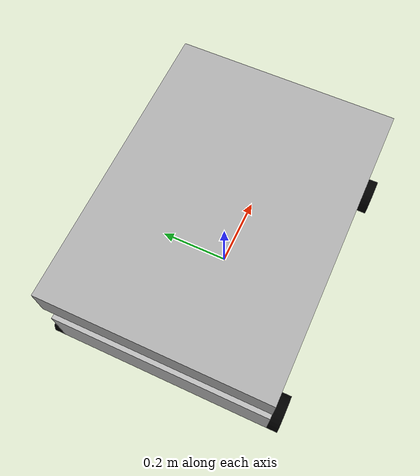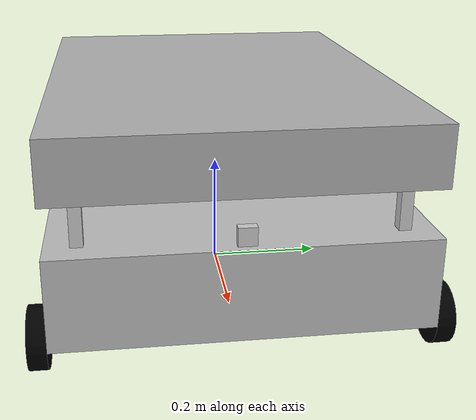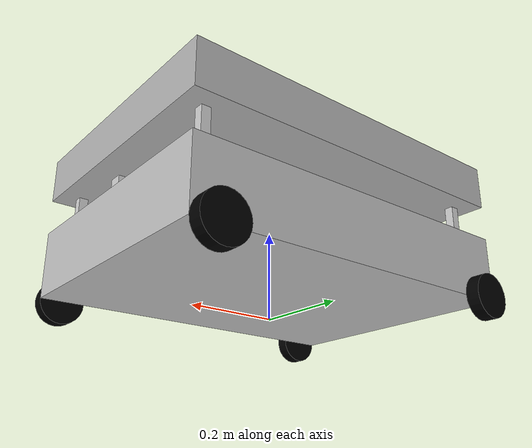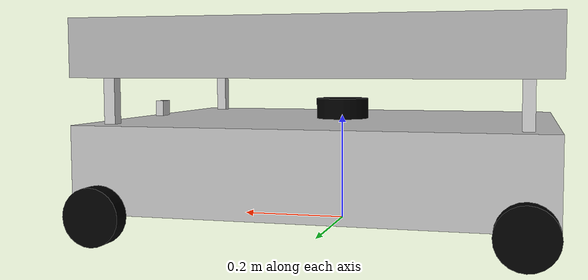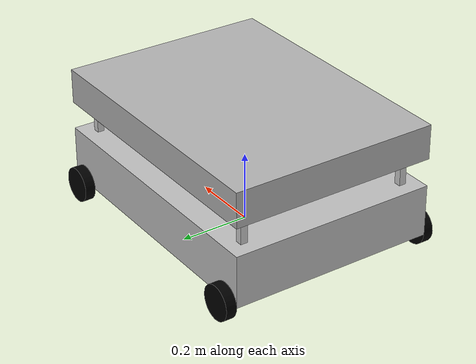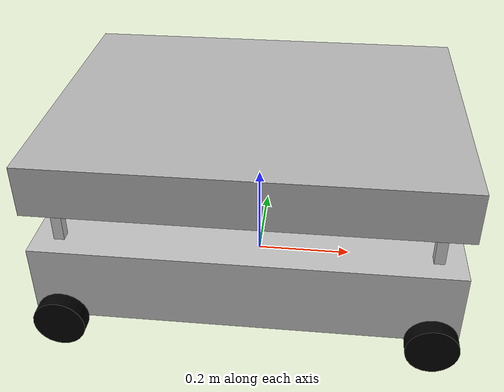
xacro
<?xml version="1.0"?>
<robot xmlns:xacro="http://www.ros.org/wiki/xacro"  name="robot">
    <xacro:include filename="robot_core.xacro"/>
    <xacro:include filename="camera.xacro"/>
    <xacro:include filename="lidar.xacro"/>
    <xacro:include filename="joint_macros.xacro"/>
    <xacro:include filename="wheel.xacro"/>
    <xacro:include filename="hardware_interface"/>
    <xacro:include filename="link_macros.xacro"/>

</robot>

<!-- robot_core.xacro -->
<robot xmlns:xacro="http://www.ros.org/wiki/xacro">

    <xacro:property name="body_length_1" value="0.8"/>
    <xacro:property name="body_width_1" value="0.6"/>
    <xacro:property name="body_height_1" value="0.15"/>

    <xacro:property name="body_length_2" value="0.8"/>
    <xacro:property name="body_width_2" value="0.6"/>
    <xacro:property name="body_height_2" value="0.1"/>

    <link name="base_link"></link>
    <joint name="base_joint" type="fixed">
        <parent link="base_link"/>
        <child link="base_footprint"/>
        <origin xyz="0.0 0.0 0.0" rpy="0 0 0"/>
      </joint>

    <link name="base_footprint">
    </link>

    <joint name="chassis_1_joint" type="fixed">
        <parent link="base_link"/>
        <child link="chassis_1"/>
        <origin xyz="0.0 0.0 0.12" rpy="0 0 0" />
    </joint>

    <link name="chassis_1">
        <visual>
            <geometry>
                <box size="${body_length_1} ${body_width_1} ${body_height_1} "/>
            </geometry>
            <material name="chassis_1_mat_silver">
                <color rgba="0.75 0.75 0.75 1.0"/>
            </material>
        </visual>
    </link>
    <joint name="sup_rod_1" type="fixed">
        <parent link="chassis_1"/>
        <child link="sup_rod_1"/>
        <origin xyz="-0.35 0.25 0.115" rpy="0 0 0"/>
    </joint>

    <link name="sup_rod_1">
        <visual>
            <geometry>
                <box size="0.02 0.02 0.08"/>
            </geometry>
            <material name="sup_ros_2_red">
                <color rgba="0.8 0.8 0.8"/>
            </material>
        </visual>
    </link>

    <joint name="sup_rod_2_joint" type="fixed">
        <parent link="chassis_1"/>
        <child link="sup_rod_2"/>
        <origin xyz="0.35 -0.25 0.115" rpy="0 0 0"/>
    </joint>

    <link name="sup_rod_2">
        <visual>
            <geometry>
                <box size="0.02 0.02 0.08"/>
            </geometry>
            <material name="sup_ros_2_red">
                <color rgba="0.8 0.8 0.8"/>
            </material>
        </visual>
    </link>

    <joint name="sup_rod_3_joint" type="fixed">
        <parent link="chassis_1"/>
        <child link="sup_rod_3"/>
        <origin xyz="-0.35 -0.25 0.115" rpy="0 0 0"/>
    </joint>

    <link name="sup_rod_3">
        <visual>
            <geometry>
                <box size="0.02 0.02 0.08"/>
            </geometry>
            <material name="sup_ros_3_red">
                <color rgba="0.8 0.8 0.8"/>
            </material>
        </visual>
    </link>

    <joint name="sup_rod_4_joint" type="fixed">
        <parent link="chassis_1"/>
        <child link="sup_rod_4"/>
        <origin xyz="0.35 0.25 0.115" rpy="0 0 0"/>
    </joint>

    <link name="sup_rod_4">
        <visual>
            <geometry>
                <box size="0.02 0.02 0.08"/>
            </geometry>
            <material name="sup_ros_4_red">
                <color rgba="0.8 0.8 0.8"/>
            </material>
        </visual>
    </link>

    <joint name="chassis_2_joint" type="fixed">
        <parent link="chassis_1"/>
        <child link="chassis_2"/>
        <origin xyz="0.0 0.0 0.205" rpy="0.0 0.0 0.0"/>
    </joint>

    <link name="chassis_2">
        <visual>
            <geometry>
                <box size="${body_length_2} ${body_width_2} ${body_height_2}"/>
                <material name="chassis_2_mat_silver">
                    <color rgba="0.8 0.8 0.8 1.0"/>
                </material>
            </geometry>
        </visual>
    </link>

    <joint name="imu_joint" type="fixed">
        <parent link="chassis_1"/>
        <child link="imu_link"/>
        <axis xyz="0.0 0.0 0.10"/>
        <origin xyz="0.0 0.0 0.100" rpy="0.0 0.0 0.0"/>
    </joint>

    <link name="imu_link"></link>

</robot>

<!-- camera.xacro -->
<robot xmlns:xacro="http://www.ros.org/wiki/xacro" name="prototype">
    <link name="camera_link">
        <visual>
            <origin xyz="0 0 0" rpy="0 0 0"/>
            <geometry>
                <box size="0.015 0.03 0.03"/>
            </geometry>
            <material name="camera_material">
                <color rgba="0.8 0.8 0.8 "/>
            </material>
        </visual>
    </link>
    <joint name="camera_joint" type="fixed">
        <origin xyz="0.38 0 0.09" rpy="0 0 0"/>
        <parent link="chassis_1"/>
        <child link="camera_link"/>
    </joint>

</robot>

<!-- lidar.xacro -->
<robot xmlns:xacro="https://www.ros.org/wiki/xacro" name="prototype">
    <link name="base_laser">
        <visual>
            <geometry>
                <cylinder radius="0.05" length="0.077"/>
            </geometry>
            <material name="black">
                <color rgba="0 0 0 1"/>
            </material>
        </visual>

        <collision>
            <origin rpy="0 0 0" xyz="0 0 0"/>
            <geometry>
                <cylinder radius="0.0408" length="0.037493"/>
            </geometry>
        </collision>
        <inertial>
            <mass value="0.01"/>
            <origin rpy="0 0 0" xyz="0 0 0.0204"/>
            <inertia ixx="6.066578520833334e-06" ixy="0" ixz="0" iyy="6.072950163333333e-06" iyz="0" izz="9.365128684166666e-06"/>
        </inertial>
    </link>

    <joint name="base_laser_joint" type="fixed">
        <origin xyz="0.0 0.0 0.075" rpy="0.0 0.0 0.0"/>
        <parent link="chassis_1"/>
        <child link="base_laser"/>
    </joint>
</robot>

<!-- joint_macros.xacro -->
<robot xmlns:xacro="http://www.ros.org/wiki/xacro" name="prototype">

    <xacro:property name="wheel_radius" value="0.05"/>
    <xacro:property name="wheel_length" value="0.03"/>

   <!--===============xacro for continuous joints=========================-->
    <xacro:macro name="joint_wheel" params="name origin parent child">
        <joint name="${name}" type="fixed">
            <origin xyz="${origin}" rpy="0.0 0.0 0.0"/>
            <parent link="${parent}"/>
            <child link="${child}"/>
            <axis xyz="0.0 1.0 0.0"/>
            <limit effort="200" velocity="2.0"/>
            <joint_properties damping="1.1" friction="1.0"/>
        </joint>
    </xacro:macro>

  <!--===================== xacro for fixed joints===========================-->
  <xacro:macro name="fixed_joint" params="name origin parent child">
    <joint name="${name}" type="fixed">
        <origin xyz="${origin}" rpy="0.0 0.0 0.0"/>
        <parent link="${parent}"/>
        <child link="${child}"/>
    </joint>
  </xacro:macro>

</robot>

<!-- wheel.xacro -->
<!--=========================starting xacros================================-->
<robot xmlns:xacro="http://www.ros.org/wiki/xacro" name="prototype">
<xacro:include filename="$(find prototype)/urdf/joint_macros.xacro"/>

<!--==========================xacro for wheel=============================-->
    <xacro:macro name="wheel" params="wheel_name">
        <link name="${wheel_name}">
            <visual>
                <origin xyz="0.0 0.0 0.0" rpy="1.57 0.0 0.0"/>
                <geometry>
                 <cylinder radius="${wheel_radius}" length="${wheel_length}"/>
                </geometry>
                <material name="black">
                    <color rgba="0.0 0.0 0.0 1.0"/>
                </material>
            </visual>
            <collision>
                <origin xyz="0.0 0.0 0.0" rpy="0.0 1.5707 0.0"/>
                <geometry>
                    <cylinder radius="${wheel_radius}" length="${wheel_length}"/>
                </geometry>
            </collision>
            <inertial>
                <origin rpy="0 0 0" xyz="0 0 0"/>
                <mass value="0.034"/>
              <inertia ixx="1.37e-5" ixy="0" ixz="0" iyy="1.37e-5" iyz="0" izz="3.41e-6"/>
              </inertial>
              <dynamics damping="0.5" friction="0.1"/>

        </link>
   </xacro:macro>

   <!-- *********************wheel links and joints***************************************-->

<xacro:joint_wheel name="back_right_wheel_joint" origin="-0.35 -0.315 -0.075"
parent="chassis_1" child="back_right_wheel"/>

<xacro:wheel  wheel_name="back_right_wheel"/>

<xacro:joint_wheel name="back_left_wheel_joint" origin="-0.35 0.315 -0.075"
parent="chassis_1" child="back_left_wheel"/>

<xacro:wheel  wheel_name="back_left_wheel"/>

<xacro:joint_wheel name="front_right_wheel_joint" origin="0.35 -0.315 -0.075"
parent="chassis_1" child="front_right_wheel"/>

<xacro:wheel  wheel_name="front_right_wheel"/>

<xacro:joint_wheel name="front_left_wheel_joint" origin="0.35 0.315 -0.075"
parent="chassis_1" child="front_left_wheel"/>

<xacro:wheel  wheel_name="front_left_wheel"/>

</robot>
